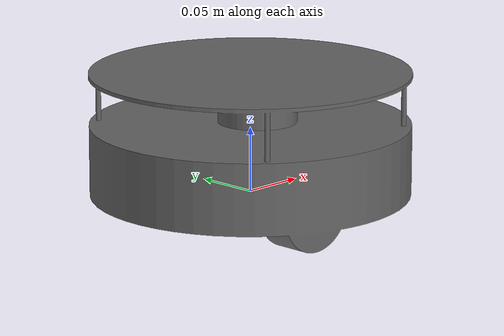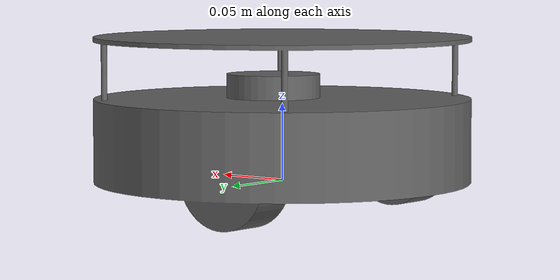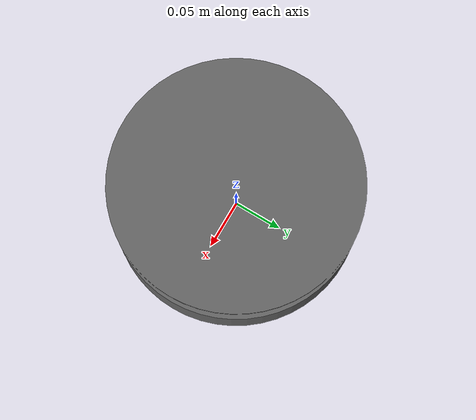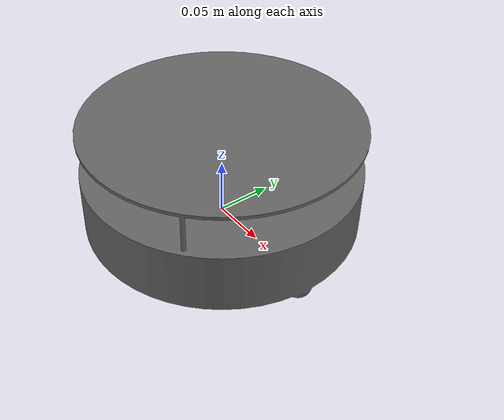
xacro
<?xml version="1.0" ?>
<robot name="hawkbot" xmlns:xacro="http://ros.org/wiki/xacro">
    <xacro:include filename="$(find hawkbot)/model/common_properties.xacro"/>
    <xacro:include filename="$(find hawkbot)/model/hawkbot.gazebo.xacro"/>

    <link name="base_footprint">
        <visual>
            <origin xyz="0 0 0.0" rpy="0 0 0"/>
            <geometry>
                <mesh filename="package://hawkbot/HB-03S.stl" scale="0.001 0.001 0.001"/>
            </geometry>
               <material name="black">
      	         <color rgba="0.4 0.4 0.4 1.0" />
               </material>
        </visual>
    </link>

</robot>
